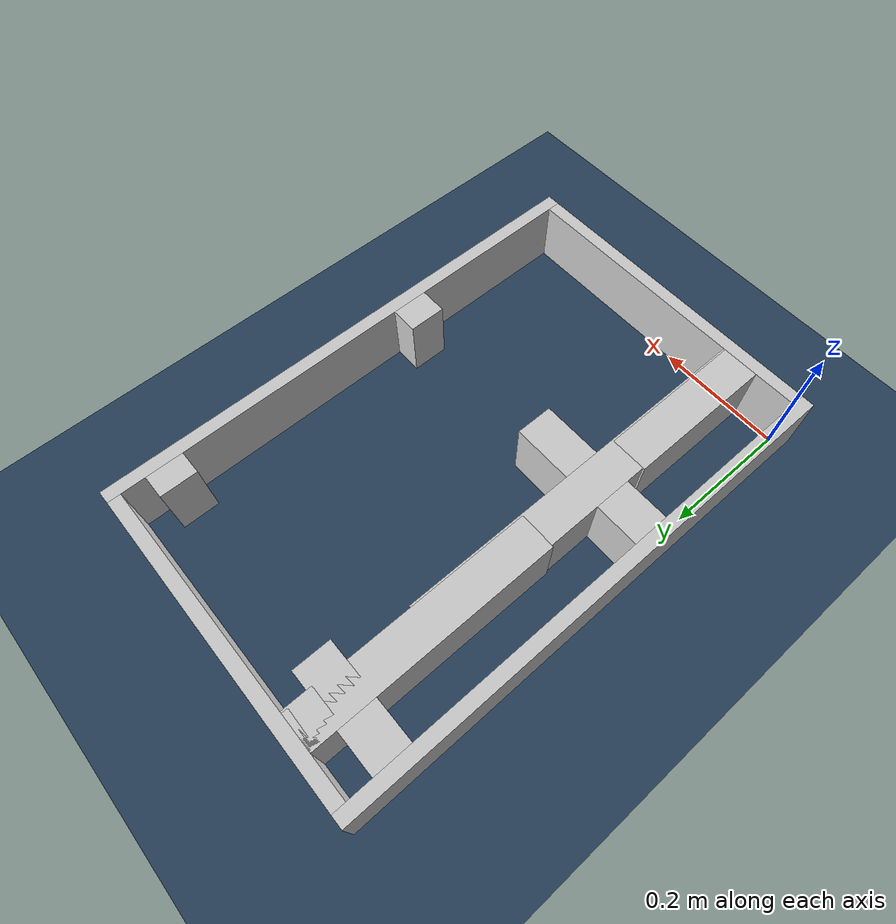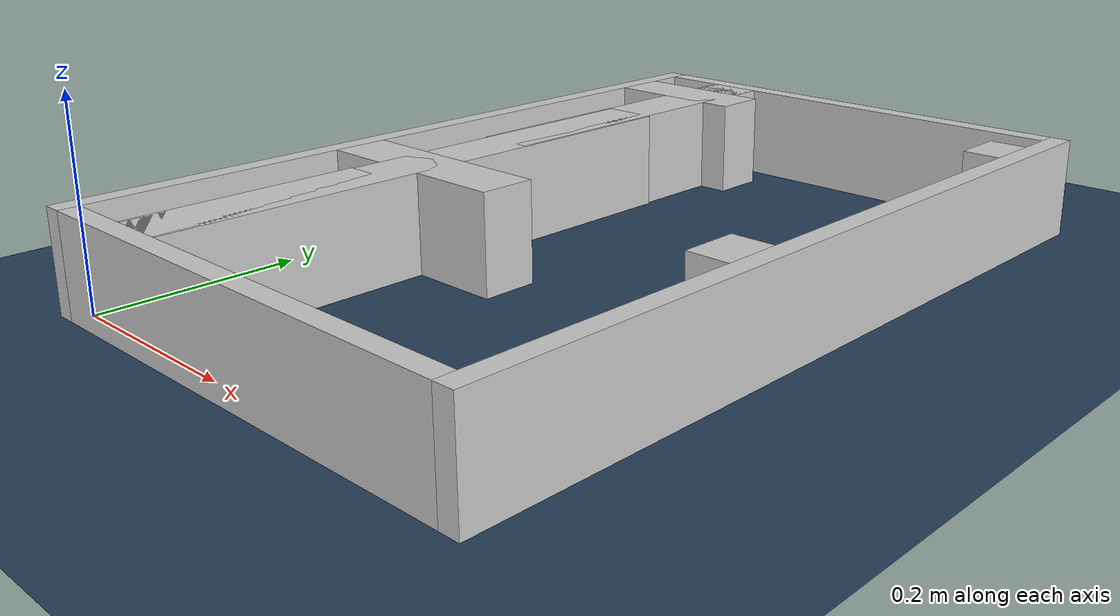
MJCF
<?xml version="1.0" ?>
<mujoco model="generated_real_template">
  <compiler angle="degree"/>
  <option timestep="0.002" integrator="implicitfast" iterations="100" cone="elliptic"/>
  <default>
    <geom density="1"/>
  </default>
  <asset>
    <texture builtin="gradient" height="3072" rgb1="0.3 0.5 0.7" rgb2="0 0 0" type="skybox" width="512"/>
    <texture builtin="checker" height="300" mark="edge" markrgb="0.8 0.8 0.8" name="groundplane" rgb1="0.2 0.3 0.4" rgb2="0.1 0.2 0.3" type="2d" width="300"/>
    <material name="groundplane" reflectance="0.2" texrepeat="5 5" texture="groundplane" texuniform="true"/>
  </asset>
  <worldbody>
    <light dir="0 0 -1" directional="true" pos="0 0 1.5"/>
    <geom name="floor" type="plane" condim="4" friction="0.5 0.005 0.001" material="groundplane" size="0 0 0.05"/>
    <body name="walls">
      <geom name="wall_boundary_left" type="box" condim="4" friction="1.0 0.005 0.0001" rgba="0.8 0.8 0.8 1" pos="-0.010000 0.387500 0.050000" euler="0 0 0.000000" size="0.010000 0.407500 0.050000"/>
      <geom name="wall_boundary_right" type="box" condim="4" friction="1.0 0.005 0.0001" rgba="0.8 0.8 0.8 1" pos="0.500000 0.387500 0.050000" euler="0 0 0.000000" size="0.010000 0.407500 0.050000"/>
      <geom name="wall_boundary_bottom" type="box" condim="4" friction="1.0 0.005 0.0001" rgba="0.8 0.8 0.8 1" pos="0.245000 -0.010000 0.050000" euler="0 0 0.000000" size="0.245000 0.010000 0.050000"/>
      <geom name="wall_boundary_top" type="box" condim="4" friction="1.0 0.005 0.0001" rgba="0.8 0.8 0.8 1" pos="0.245000 0.785000 0.050000" euler="0 0 0.000000" size="0.245000 0.010000 0.050000"/>
      <geom name="wall_inner_1_1" type="box" condim="4" friction="1.0 0.005 0.0001" rgba="0.8 0.8 0.8 1" pos="0.096845 0.292543 0.050000" euler="0 0 90.000000" size="0.292543 0.028500 0.050000"/>
      <geom name="wall_inner_1_2" type="box" condim="4" friction="1.0 0.005 0.0001" rgba="0.8 0.8 0.8 1" pos="0.096845 0.752622 0.050000" euler="0 0 90.000000" size="0.022378 0.028500 0.050000"/>
      <geom name="wall_inner_2_1" type="box" condim="4" friction="1.0 0.005 0.0001" rgba="0.8 0.8 0.8 1" pos="0.094290 0.115607 0.050000" euler="0 0 90.000000" size="0.115607 0.028500 0.050000"/>
      <geom name="wall_inner_2_2" type="box" condim="4" friction="1.0 0.005 0.0001" rgba="0.8 0.8 0.8 1" pos="0.094290 0.587067 0.050000" euler="0 0 90.000000" size="0.187933 0.028500 0.050000"/>
      <geom name="wall_inner_3_1" type="box" condim="4" friction="1.0 0.005 0.0001" rgba="0.8 0.8 0.8 1" pos="0.077536 0.709965 0.050000" euler="0 0 0.000000" size="0.077536 0.028500 0.050000"/>
      <geom name="wall_inner_3_2" type="box" condim="4" friction="1.0 0.005 0.0001" rgba="0.8 0.8 0.8 1" pos="0.471119 0.709965 0.050000" euler="0 0 0.000000" size="0.018881 0.028500 0.050000"/>
      <geom name="wall_inner_4_1" type="box" condim="4" friction="1.0 0.005 0.0001" rgba="0.8 0.8 0.8 1" pos="0.108951 0.289419 0.050000" euler="0 0 0.000000" size="0.108951 0.028500 0.050000"/>
      <geom name="wall_inner_4_2" type="box" condim="4" friction="1.0 0.005 0.0001" rgba="0.8 0.8 0.8 1" pos="0.468752 0.289419 0.050000" euler="0 0 0.000000" size="0.021248 0.028500 0.050000"/>
    </body>
  </worldbody>
</mujoco>
